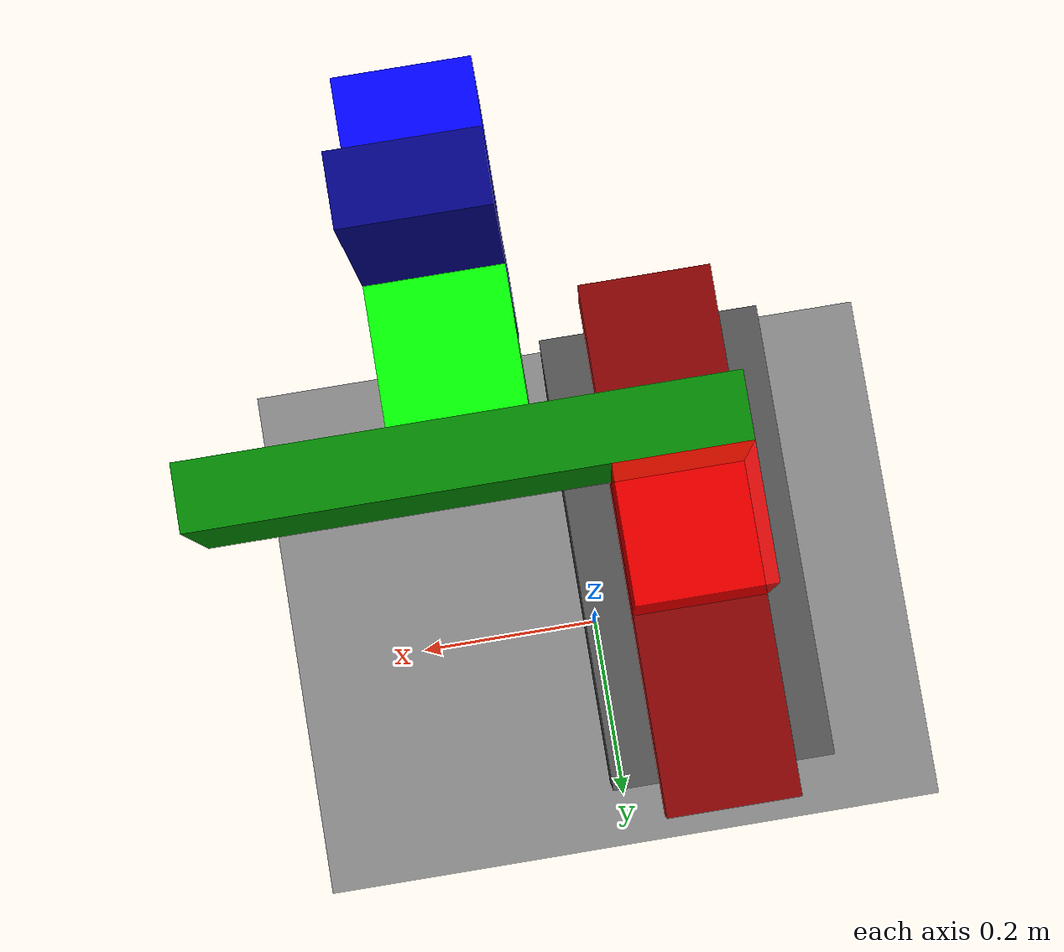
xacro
<?xml version="1.0"?>
<robot name="cartesian_robot">

  <!-- Main base link -->
  <link name="main_base_link">
    <visual>
      <geometry>
        <box size="0.57 0.47 0.88"/>
      </geometry>
      <material name="grey">
        <color rgba="0.5 0.5 0.5 1.0"/>
      </material>
    </visual>
    <collision>
      <geometry>
        <box size="0.57 0.47 0.88"/>
      </geometry>
    </collision>
    <inertial>
      <mass value="10"/>
      <inertia ixx="0.4" ixy="0.0" ixz="0.0" iyy="0.4" iyz="0.0" izz="0.4"/>
    </inertial>
  </link>

  <!-- Additional base link -->
  <link name="additional_base_link">
    <visual>
      <geometry>
        <box size="0.17 0.35 0.34"/>
      </geometry>
      <material name="dark_grey">
        <color rgba="0.3 0.3 0.3 1.0"/>
      </material>
    </visual>
    <collision>
      <geometry>
        <box size="0.17 0.35 0.34"/>
      </geometry>
    </collision>
    <inertial>
      <mass value="5"/>
      <inertia ixx="0.1" ixy="0.0" ixz="0.0" iyy="0.1" iyz="0.0" izz="0.1"/>
    </inertial>
  </link>

  <!-- X Axis link -->
  <link name="x_link">
    <visual>
      <geometry>
        <box size="0.1 0.1 0.1"/>
      </geometry>
      <material name="red">
        <color rgba="1.0 0.0 0.0 0.8"/>
      </material>
    </visual>
    <collision>
      <geometry>
        <box size="0.1 0.1 0.1"/>
      </geometry>
    </collision>
    <inertial>
      <mass value="1"/>
      <inertia ixx="0.00167" ixy="0.0" ixz="0.0" iyy="0.00167" iyz="0.0" izz="0.00167"/>
    </inertial>
  </link>

  <!-- X Axis rail -->
  <link name="x_rail">
    <visual>
      <geometry>
        <box size="0.4 0.1 0.05"/>
      </geometry>
      <material name="d_red">
        <color rgba="0.5 0.0 0.0 1.0"/>
      </material>
    </visual>
    <collision>
      <geometry>
        <box size="0.4 0.1 0.05"/>
      </geometry>
    </collision>
    <inertial>
      <mass value="2"/>
      <inertia ixx="0.00271" ixy="0.0" ixz="0.0" iyy="0.02771" iyz="0.0" izz="0.02938"/>
    </inertial>
  </link>

  <!-- Y Axis link -->
  <link name="y_link">
    <visual>
      <geometry>
        <box size="0.1 0.1 0.1"/>
      </geometry>
      <material name="green">
        <color rgba="0.0 1.0 0.0 1.0"/>
      </material>
    </visual>
    <collision>
      <geometry>
        <box size="0.1 0.1 0.1"/>
      </geometry>
    </collision>
    <inertial>
      <mass value="1"/>
      <inertia ixx="0.00167" ixy="0.0" ixz="0.0" iyy="0.00167" iyz="0.0" izz="0.00167"/>
    </inertial>
  </link>

  <!-- Y Axis rail -->
  <link name="y_rail">
    <visual>
      <geometry>
        <box size="0.05 0.4 0.1"/>
      </geometry>
      <material name="d_green">
        <color rgba="0.0 0.5 0.0 1.0"/>
      </material>
    </visual>
    <collision>
      <geometry>
        <box size="0.05 0.4 0.1"/>
      </geometry>
    </collision>
    <inertial>
      <mass value="2"/>
      <inertia ixx="0.02771" ixy="0.0" ixz="0.0" iyy="0.00271" iyz="0.0" izz="0.02938"/>
    </inertial>
  </link>

  <!-- Z Axis link -->
  <link name="z_link">
    <visual>
      <geometry>
        <box size="0.1 0.1 0.1"/>
      </geometry>
      <material name="blue">
        <color rgba="0.0 0.0 1.0 1.0"/>
      </material>
    </visual>
    <collision>
      <geometry>
        <box size="0.1 0.1 0.1"/>
      </geometry>
    </collision>
    <inertial>
      <mass value="1"/>
      <inertia ixx="0.00167" ixy="0.0" ixz="0.0" iyy="0.00167" iyz="0.0" izz="0.00167"/>
    </inertial>
  </link>

  <!-- Z Axis rail -->
  <link name="z_rail">
    <visual>
      <geometry>
        <box size="0.05 0.1 0.4"/>
      </geometry>
      <material name="d_blue">
        <color rgba="0.0 0.0 0.5 1.0"/>
      </material>
    </visual>
    <collision>
      <geometry>
        <box size="0.05 0.1 0.4"/>
      </geometry>
    </collision>
    <inertial>
      <mass value="2"/>
      <inertia ixx="0.02771" ixy="0.0" ixz="0.0" iyy="0.02938" iyz="0.0" izz="0.00271"/>
    </inertial>
  </link>

  <!-- Fixed joint between main base and additional base -->
  <joint name="fixed_joint_base" type="fixed">
    <parent link="main_base_link"/>
    <child link="additional_base_link"/>
    <origin xyz="-0.07 0 0.61" rpy="0 0 0"/>
  </joint>

  <!-- arm base x rail -->
  <joint name="fixed_x_joint_" type="fixed">
    <parent link="additional_base_link"/>
    <child link="x_rail"/>
    <origin xyz="0 0 0.2" rpy="0 0 -1.5708"/>
  </joint>

  <!-- X Axis joint -->
  <joint name="x_joint" type="prismatic">
    <parent link="x_rail"/>
    <child link="x_link"/>
    <origin xyz="0 0 0.075" rpy="0 0 0"/>
    <axis xyz="1 0 0"/>
    <limit lower="0.0" upper="0.2" effort="1000.0" velocity="0.1"/>
  </joint>

  <!-- X link, y rail -->
  <joint name="fixed_y_joint" type="fixed">
    <parent link="x_link"/>
    <child link="y_rail"/>
    <origin xyz="0.075 0.15 0" rpy="0 0 0"/>
  </joint>

  <!-- Y Axis joint -->
  <joint name="y_joint" type="prismatic">
    <parent link="y_rail"/>
    <child link="y_link"/>
    <origin xyz="0.075 0 0.0" rpy="0 0 0"/>
    <axis xyz="0 1 0"/>
    <limit lower="0.0" upper="0.2" effort="1000.0" velocity="0.1"/>
  </joint>

  <!-- Y link, Z rail -->
  <joint name="fixed_z_joint" type="fixed">
    <parent link="y_link"/>
    <child link="z_rail"/>
    <origin xyz="0.075 0 0" rpy="0 0 0"/>
  </joint>

  <!-- Z Axis joint -->
  <joint name="z_joint" type="prismatic">
    <parent link="z_rail"/>
    <child link="z_link"/>
    <origin xyz="0.075 0 0.0" rpy="0 0 0"/>
    <axis xyz="0 0 -1"/>
    <limit lower="0.0" upper="0.2" effort="1000.0" velocity="0.1"/>
  </joint>

  <!-- Transmissions for ros_control -->
  <transmission name="x_trans">
    <type>transmission_interface/SimpleTransmission</type>
    <joint name="x_joint">
      <hardwareInterface>hardware_interface/PositionJointInterface</hardwareInterface>
    </joint>
    <actuator name="x_motor">
      <mechanicalReduction>1</mechanicalReduction>
    </actuator>
  </transmission>

  <transmission name="y_trans">
    <type>transmission_interface/SimpleTransmission</type>
    <joint name="y_joint">
      <hardwareInterface>hardware_interface/PositionJointInterface</hardwareInterface>
    </joint>
    <actuator name="y_motor">
      <mechanicalReduction>1</mechanicalReduction>
    </actuator>
  </transmission>

  <transmission name="z_trans">
    <type>transmission_interface/SimpleTransmission</type>
    <joint name="z_joint">
      <hardwareInterface>hardware_interface/PositionJointInterface</hardwareInterface>
    </joint>
    <actuator name="z_motor">
      <mechanicalReduction>1</mechanicalReduction>
    </actuator>
  </transmission>

  <!-- Gazebo-specific elements -->
  <gazebo reference="main_base_link">
    <material>Gazebo/Grey</material>
  </gazebo>

  <gazebo reference="additional_base_link">
    <material>Gazebo/DarkGrey</material>
  </gazebo>

  <gazebo reference="x_link">
    <material>Gazebo/Red</material>
  </gazebo>

  <gazebo reference="x_rail">
    <material>Gazebo/RedBright</material>
  </gazebo>

  <gazebo reference="y_link">
    <material>Gazebo/Green</material>
  </gazebo>

  <gazebo reference="y_rail">
    <material>Gazebo/GreenBright</material>
  </gazebo>

  <gazebo reference="z_link">
    <material>Gazebo/Blue</material>
  </gazebo>

  <gazebo reference="z_rail">
    <material>Gazebo/BlueBright</material>
  </gazebo>

  <gazebo>
    <plugin name="gazebo_ros_control" filename="libgazebo_ros_control.so">
      <robotNamespace>/cartesian_robot</robotNamespace>
      <robotSimType>gazebo_ros_control/DefaultRobotHWSim</robotSimType>
      <legacyModeNS>true</legacyModeNS>
    </plugin>
  </gazebo>

</robot>
